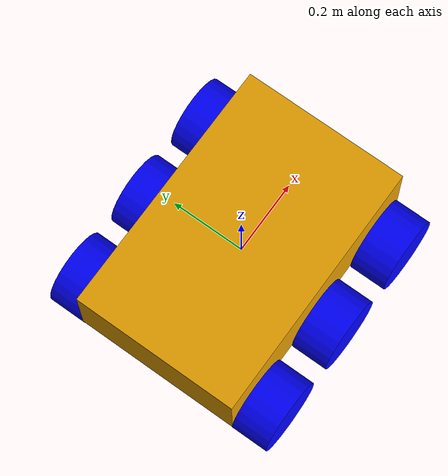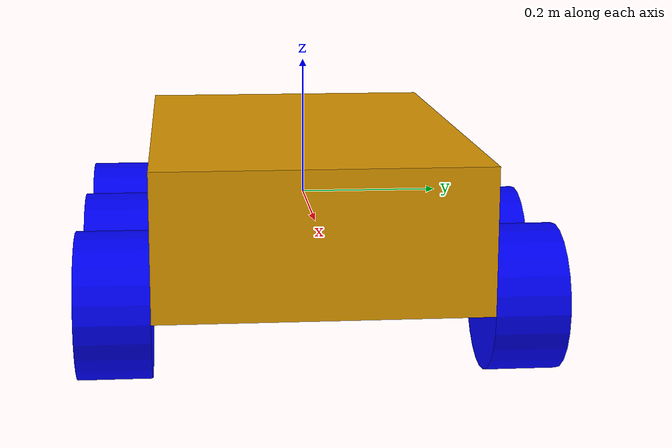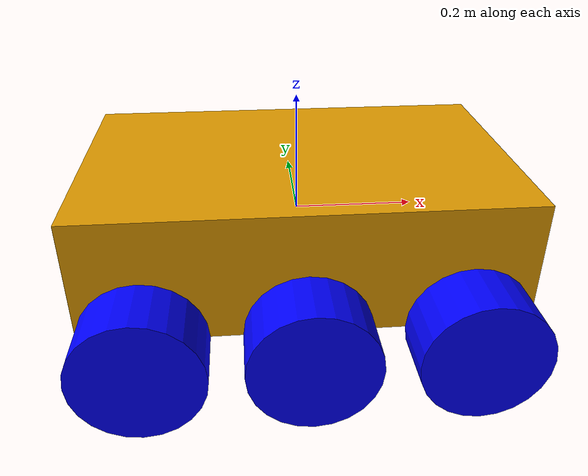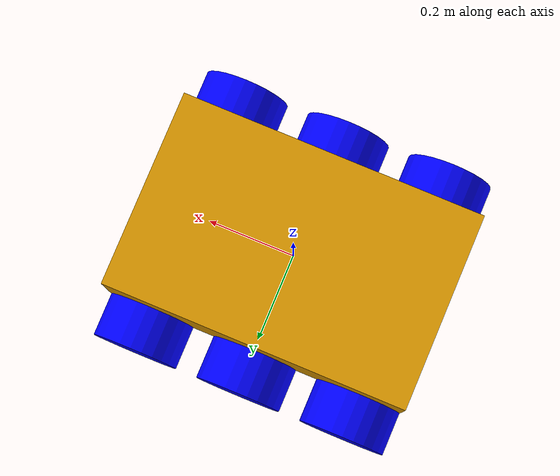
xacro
<?xml version="1.0"?>
<robot name="rover" xmlns:xacro="http://www.ros.org/wiki/xacro">

  <xacro:include filename="$(find rover_description)/urdf/common_properties.xacro"/>
  <xacro:include filename="$(find rover_description)/urdf/mobile_base.xacro"/>
  <xacro:include filename="$(find rover_description)/urdf/mobile_base.ros2_control.xacro"/>

</robot>

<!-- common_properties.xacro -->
<robot xmlns:xacro="http://www.ros.org/wiki/xacro">

  <material name="blue">
    <color rgba="0.0 0.0 1.0 1.0"/>
  </material>

</robot>

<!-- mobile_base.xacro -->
<robot xmlns:xacro="http://www.ros.org/wiki/xacro">

  <!-- ==================== CHASSIS ==================== -->
  <link name="base_link">
    <visual>
      <geometry><box size="0.7 0.45 0.2"/></geometry>
      <origin xyz="0 0 0" rpy="0 0 0"/>
    </visual>
  </link>

  <!-- ==================== WHEEL LINKS ==================== -->
  <!-- Visual rotated 90deg around X so the cylinder disk faces outward (Y axis) -->

  <link name="wheel_front_left">
    <visual>
      <geometry><cylinder radius="0.1" length="0.1"/></geometry>
      <origin xyz="0 0 0" rpy="1.5708 0 0"/>
      <material name="blue"/>
    </visual>
  </link>

  <link name="wheel_mid_left">
    <visual>
      <geometry><cylinder radius="0.1" length="0.1"/></geometry>
      <origin xyz="0 0 0" rpy="1.5708 0 0"/>
      <material name="blue"/>
    </visual>
  </link>

  <link name="wheel_rear_left">
    <visual>
      <geometry><cylinder radius="0.1" length="0.1"/></geometry>
      <origin xyz="0 0 0" rpy="1.5708 0 0"/>
      <material name="blue"/>
    </visual>
  </link>

  <link name="wheel_front_right">
    <visual>
      <geometry><cylinder radius="0.1" length="0.1"/></geometry>
      <origin xyz="0 0 0" rpy="1.5708 0 0"/>
      <material name="blue"/>
    </visual>
  </link>

  <link name="wheel_mid_right">
    <visual>
      <geometry><cylinder radius="0.1" length="0.1"/></geometry>
      <origin xyz="0 0 0" rpy="1.5708 0 0"/>
      <material name="blue"/>
    </visual>
  </link>

  <link name="wheel_rear_right">
    <visual>
      <geometry><cylinder radius="0.1" length="0.1"/></geometry>
      <origin xyz="0 0 0" rpy="1.5708 0 0"/>
      <material name="blue"/>
    </visual>
  </link>

  <!-- ==================== WHEEL JOINTS ==================== -->

  <joint name="joint_wheel_front_left" type="continuous">
    <parent link="base_link"/>
    <child link="wheel_front_left"/>
    <origin xyz="0.25 0.275 -0.1" rpy="0 0 0"/>
    <axis xyz="0 1 0"/>
  </joint>

  <joint name="joint_wheel_mid_left" type="continuous">
    <parent link="base_link"/>
    <child link="wheel_mid_left"/>
    <origin xyz="0.0 0.275 -0.1" rpy="0 0 0"/>
    <axis xyz="0 1 0"/>
  </joint>

  <joint name="joint_wheel_rear_left" type="continuous">
    <parent link="base_link"/>
    <child link="wheel_rear_left"/>
    <origin xyz="-0.25 0.275 -0.1" rpy="0 0 0"/>
    <axis xyz="0 1 0"/>
  </joint>

  <joint name="joint_wheel_front_right" type="continuous">
    <parent link="base_link"/>
    <child link="wheel_front_right"/>
    <origin xyz="0.25 -0.275 -0.1" rpy="0 0 0"/>
    <axis xyz="0 1 0"/>
  </joint>

  <joint name="joint_wheel_mid_right" type="continuous">
    <parent link="base_link"/>
    <child link="wheel_mid_right"/>
    <origin xyz="0.0 -0.275 -0.1" rpy="0 0 0"/>
    <axis xyz="0 1 0"/>
  </joint>

  <joint name="joint_wheel_rear_right" type="continuous">
    <parent link="base_link"/>
    <child link="wheel_rear_right"/>
    <origin xyz="-0.25 -0.275 -0.1" rpy="0 0 0"/>
    <axis xyz="0 1 0"/>
  </joint>

</robot>
